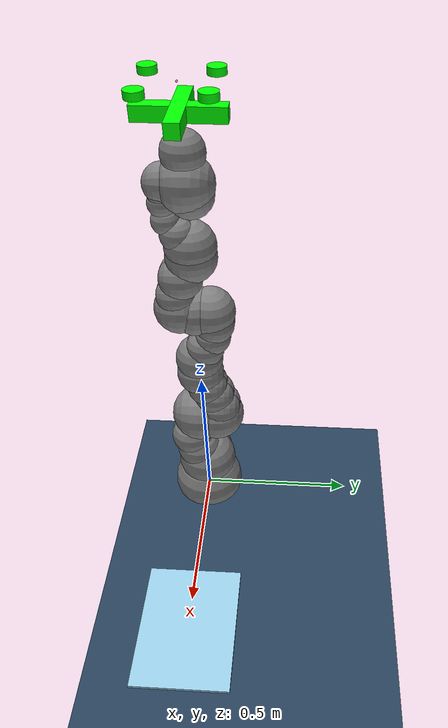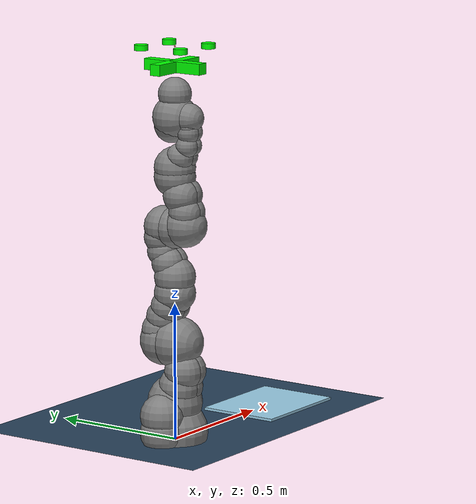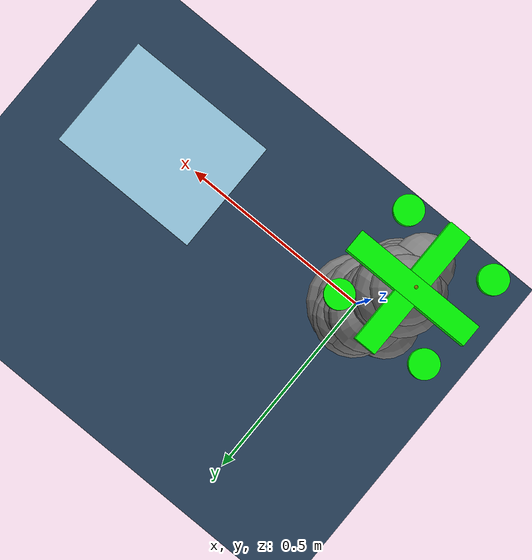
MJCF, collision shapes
<mujoco model="kuka_pick_plate_scene">
    <include file="kuka_vacuum.xml"/>

    <option timestep=".001" noslip_iterations="50" noslip_tolerance="0" impratio="100" cone="elliptic"/>

    <statistic center="0.3 0 0.4" extent=".8"/>

    <visual>
      <headlight diffuse=".4 .4 .4" ambient=".5 .5 .5"/>
      <global azimuth="160" elevation="-20" offheight="128" offwidth="128"/>
      <quality offsamples="8"/>
    </visual>

    <asset>
      <texture type="skybox" builtin="gradient" rgb1=".3 .5 .7" rgb2="0 0 0" width="32" height="512"/>
      <texture name="grid" type="2d" builtin="checker" width="512" height="512" rgb1=".1 .2 .3" rgb2=".2 .3 .4"/>
      <material name="grid" texture="grid" texrepeat="2 2" texuniform="true" reflectance="0"/>

      <material name="window_glass" rgba="0.6 0.8 0.9 0.5" shininess="0.8" reflectance="0.3" specular="0.5"/>
    </asset>

    <keyframe>
        <!-- KUKA home: qpos="0 0.785398 0 -1.5708 0 0 -1.5708" (joint7 rotated -90deg, gripper faces down) + plate initial state -->
        <key name="home" qpos="0 0.785398 0 -1.5708 0 0.785398 0 0.5 0 0.005 1 0 0 0"/>
    </keyframe>

    <worldbody>
      <!-- Front camera: adjusted for better view of KUKA workspace and plate interaction -->
      <camera name="front" pos="1.0 0.0 0.5" quat="0.5963678 0.3799282 0.3799282 0.5963678" fovy="50"/>
      <light pos="0 0 3" dir="0 0 -1" diffuse="1 1 1" specular=".3 .3 .3"/>
      <light pos="0 -.5 .4" mode="targetbodycom" target="plate_body" diffuse=".8 .8 .8" specular=".3 .3 .3"/>

      <geom name="floor" size="3 3 0.01" type="plane" material="grid"
            contype="1" conaffinity="1"
            solimp="0.99 0.99 0.01" solref="0.002 1" friction="5 5 5"/>

      <body name="plate_body" pos="0.6 0 .005">
        <freejoint name="plate_joint"/>
        <geom name="plate" type="box" size="0.2 0.15 0.005" mass="1.0" material="window_glass"
              contype="1" conaffinity="1" priority="1"
              solimp="0.99 0.99 0.01" solref="0.002 1" friction="10 10 10" condim="6"/>
      </body>

      <body name="target" pos=".15 0 .5" quat="0 1 0 0" mocap="true">
        <geom name="target" type="box" size=".03 .03 .03" contype="0" conaffinity="0" rgba=".6 .3 .3 0"/>
      </body>
    </worldbody>

    <sensor>
      <framepos name="plate_pos" objtype="geom" objname="plate"/>
      <framequat name="plate_quat" objtype="geom" objname="plate"/>
      <framepos name="block_pos" objtype="geom" objname="plate"/>
    </sensor>
</mujoco>

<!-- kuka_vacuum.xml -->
<mujoco model="kuka_vacuum">
  <compiler angle="radian" meshdir="kuka_iiwa_14/assets" autolimits="true"/>

  <option integrator="implicitfast"/>

  <default>
    <default class="iiwa">
      <material specular="0.5" shininess="0.25"/>
      <joint axis="0 0 1" armature="0.1" damping="1"/>
      <default class="joint1">
        <joint range="-2.96706 2.96706"/>
        <default class="joint2">
          <joint range="-2.0944 2.0944"/>
        </default>
      </default>
      <default class="joint3">
        <joint range="-3.05433 3.05433"/>
      </default>
      <default class="visual">
        <geom type="mesh" contype="0" conaffinity="0" group="2" material="gray"/>
      </default>
      <default class="collision">
        <geom group="3"/>
      </default>
      <site size="0.001" rgba="1 0 0 1" group="4"/>
    </default>

    <default class="vacuum_gripper">
      <default class="vacuum_gripper/visual">
         <geom contype="0" conaffinity="0" group="2"/>
      </default>
      <default class="vacuum_gripper/collision">
            <geom group="3" rgba="0 1 0 0.3" contype="1" conaffinity="1"
              condim="6" friction="10 10 10" margin="0.002"
              solimp="0.99 0.99 0.01" solref="0.004 1"/>
      </default>
    </default>
  </default>

  <asset>
    <material class="iiwa" name="gray" rgba="0.4 0.4 0.4 1"/>
    <material class="iiwa" name="light_gray" rgba="0.6 0.6 0.6 1"/>
    <material class="iiwa" name="black" rgba="0 0 0 1"/>
    <material class="iiwa" name="orange" rgba="1 0.423529 0.0392157 1"/>

    <material name="pp_black" rgba="0.1 0.1 0.1 1" specular="0.5" shininess="0.2"/>
    <material name="pp_green" rgba="0.0 0.6 0.3 1" specular="0.2" shininess="0.1"/>
    <material name="pp_yellow" rgba="0.95 0.8 0.1 1" specular="0.1" shininess="0.1"/>

    <mesh file="link_0.obj"/>
    <mesh file="link_1.obj"/>
    <mesh file="link_2_orange.obj"/>
    <mesh file="link_2_grey.obj"/>
    <mesh file="link_3.obj"/>
    <mesh file="band.obj"/>
    <mesh file="kuka.obj"/>
    <mesh file="link_4_orange.obj"/>
    <mesh file="link_4_grey.obj"/>
    <mesh file="link_5.obj"/>
    <mesh file="link_6_orange.obj"/>
    <mesh file="link_6_grey.obj"/>
    <mesh file="link_7.obj"/>

    <!-- PowerPick vacuum gripper meshes -->
    <!-- Note: meshdir is set to kuka_iiwa_14/assets, so paths are relative to that directory -->
    <!-- From kuka_iiwa_14/assets to assets/powerpick/meshes/pp30/ is ../../powerpick/meshes/pp30/ -->
    <mesh name="pp_frame" file="../../powerpick/meshes/pp30/frame_reduced.stl" scale="0.001 0.001 0.001"/>
    <mesh name="pp_bellows" file="../../powerpick/meshes/pp30/bellows.stl" scale="0.001 0.001 0.001"/>
    <mesh name="pp_lips" file="../../powerpick/meshes/pp30/lips.stl" scale="0.001 0.001 0.001"/>
  </asset>

  <worldbody>
    <light name="top" pos="0 0 2" mode="trackcom"/>
    <body name="base" childclass="iiwa">
      <inertial mass="5" pos="-0.1 0 0.07" diaginertia="0.05 0.06 0.03"/>
      <geom class="visual" mesh="link_0"/>
      <geom class="collision" size="0.12" pos="0 0 0.03"/>
      <geom class="collision" size="0.08" pos="-0.08 0 0.103"/>
      <geom class="collision" size="0.08" pos="-0.08 0 0.04"/>
      <geom class="collision" size="0.1" pos="0 0 0.14"/>
      <body name="link1" pos="0 0 0.1575">
        <inertial mass="5.76" pos="0 -0.03 0.12" diaginertia="0.0333 0.033 0.0123"/>
        <joint name="joint1" class="joint1"/>
        <site name="joint1"/>
        <geom class="visual" mesh="link_1"/>
        <geom class="collision" size="0.08" pos="0 0 -0.0005"/>
        <geom class="collision" size="0.075" pos="0.01 -0.025 0.0425"/>
        <geom class="collision" size="0.075" pos="-0.01 -0.025 0.0425"/>
        <geom class="collision" size="0.07" pos="0.01 -0.045 0.1025"/>
        <geom class="collision" size="0.07" pos="-0.01 -0.045 0.1025"/>
        <body name="link2" pos="0 0 0.2025" quat="0 0 1 1">
          <inertial mass="6.35" pos="0.0003 0.059 0.042" diaginertia="0.0305 0.0304 0.011" quat="0 0 1 1"/>
          <joint name="joint2" class="joint2"/>
          <site name="joint2"/>
          <geom class="visual" material="orange" mesh="link_2_orange"/>
          <geom class="visual" mesh="link_2_grey"/>
          <geom class="collision" size="0.095" pos="0 0 -0.01"/>
          <geom class="collision" size="0.09" pos="0 0 0.045"/>
          <geom class="collision" size="0.07" pos="-0.01 0.04 0.054"/>
          <geom class="collision" size="0.065" pos="-0.01 0.09 0.04"/>
          <geom class="collision" size="0.065" pos="-0.01 0.13 0.02"/>
          <geom class="collision" size="0.07" pos="0.01 0.04 0.054"/>
          <geom class="collision" size="0.065" pos="0.01 0.09 0.04"/>
          <geom class="collision" size="0.065" pos="0.01 0.13 0.02"/>
          <geom class="collision" size="0.075" pos="0 0.18 0"/>
          <body name="link3" pos="0 0.2045 0" quat="0 0 1 1">
            <inertial mass="3.5" pos="0 0.03 0.13" diaginertia="0.025 0.0238 0.0076"/>
            <joint name="joint3" class="joint1"/>
            <site name="joint3"/>
            <geom class="visual" mesh="link_3"/>
            <geom class="visual" material="light_gray" mesh="band"/>
            <geom class="visual" material="black" mesh="kuka"/>
            <geom class="collision" size="0.075" pos="0 0 0.0355"/>
            <geom class="collision" size="0.06" pos="0.01 0.023 0.0855"/>
            <geom class="collision" size="0.055" pos="0.01 0.048 0.1255"/>
            <geom class="collision" size="0.06" pos="0.01 0.056 0.1755"/>
            <geom class="collision" size="0.06" pos="-0.01 0.023 0.0855"/>
            <geom class="collision" size="0.055" pos="-0.01 0.048 0.1255"/>
            <geom class="collision" size="0.06" pos="-0.01 0.056 0.1755"/>
            <geom class="collision" size="0.075" pos="0 0.045 0.2155"/>
            <geom class="collision" size="0.075" pos="0 0 0.2155"/>
            <body name="link4" pos="0 0 0.2155" quat="1 1 0 0">
              <inertial mass="3.5" pos="0 0.067 0.034" diaginertia="0.017 0.0164 0.006" quat="1 1 0 0"/>
              <joint name="joint4" class="joint2"/>
              <site name="joint4"/>
              <geom class="visual" material="orange" mesh="link_4_orange"/>
              <geom class="visual" mesh="link_4_grey"/>
              <geom class="collision" size="0.078" pos="0 0.01 0.046"/>
              <geom class="collision" size="0.06" pos="0.01 0.06 0.052"/>
              <geom class="collision" size="0.065" pos="0.01 0.12 0.034"/>
              <geom class="collision" size="0.06" pos="-0.01 0.06 0.052"/>
              <geom class="collision" size="0.065" pos="-0.01 0.12 0.034"/>
              <geom class="collision" size="0.075" pos="0 0.184 0"/>
              <body name="link5" pos="0 0.1845 0" quat="0 0 1 1">
                <inertial mass="3.5" pos="0.0001 0.021 0.076" diaginertia="0.01 0.0087 0.00449"/>
                <joint name="joint5" class="joint1"/>
                <site name="joint5"/>
                <geom class="visual" mesh="link_5"/>
                <geom class="visual" material="light_gray" mesh="band"/>
                <geom class="visual" material="black" mesh="kuka"/>
                <geom class="collision" size="0.075" pos="0 0 0.0335"/>
                <geom class="collision" size="0.05" pos="-0.012 0.031 0.0755"/>
                <geom class="collision" size="0.05" pos="0.012 0.031 0.0755"/>
                <geom class="collision" size="0.04" pos="-0.012 0.06 0.1155"/>
                <geom class="collision" size="0.04" pos="0.012 0.06 0.1155"/>
                <geom class="collision" size="0.04" pos="-0.01 0.065 0.1655"/>
                <geom class="collision" size="0.04" pos="0.01 0.065 0.1655"/>
                <geom class="collision" size="0.035" pos="-0.012 0.065 0.1855"/>
                <geom class="collision" size="0.035" pos="0.012 0.065 0.1855"/>
                <body name="link6" pos="0 0 0.2155" quat="1 1 0 0">
                  <inertial mass="1.8" pos="0 0.0006 0.0004" diaginertia="0.0049 0.0047 0.0036" quat="1 1 0 0"/>
                  <joint name="joint6" class="joint2"/>
                  <site name="joint6"/>
                  <geom class="visual" material="orange" mesh="link_6_orange"/>
                  <geom class="visual" mesh="link_6_grey"/>
                  <geom class="collision" size="0.055" pos="0 0 -0.059"/>
                  <geom class="collision" size="0.065" pos="0 -0.03 0.011"/>
                  <geom class="collision" size="0.08"/>
                  <body name="link7" pos="0 0.081 0" quat="0 0 1 1">
                    <inertial mass="1.2" pos="0 0 0.02" diaginertia="0.001 0.001 0.001"/>
                    <joint name="joint7" class="joint3"/>
                    <site name="joint7"/>
                    <geom class="visual" mesh="link_7"/>
                    <geom class="collision" size="0.06" pos="0 0 0.001"/>
                    <site name="attachment_site" pos="0 0 0.045"/>
                    <!-- Wrist camera for visual feedback -->
                    <camera name="handcam_depth" pos="-0.05 0 0" fovy="62" quat="0 1 -1 0"/>
                    <camera name="handcam_rgb" pos="-0.05 0.015 0" fovy="42.5" quat="0 1 -1 0"/>

                    <!-- Vacuum gripper attached to link7 -->
                    <body name="vacuum_gripper" pos="0 0 0.15" quat="0 1 0 0" childclass="vacuum_gripper">
                      <inertial mass="0.5" pos="0 0 0.05" diaginertia="0.005 0.005 0.005"/>

                      <geom type="mesh" mesh="pp_frame" material="pp_black"
                            pos="-0.135010 -0.792761 -0.235147" quat="1 0 0 0"
                            contype="0" conaffinity="0" group="2"/>
                      <geom type="mesh" mesh="pp_bellows" material="pp_green"
                            pos="-0.135010 -0.792761 -0.235147" quat="1 0 0 0"
                            contype="0" conaffinity="0" group="2"/>
                      <geom type="mesh" mesh="pp_lips" material="pp_yellow"
                            pos="-0.135010 -0.792761 -0.235147" quat="1 0 0 0"
                            contype="0" conaffinity="0" group="2"/>

                      <geom name="col_frame_x" type="box" size="0.12 0.02 0.02" pos="0 0 0.05"
                            group="3" rgba="0 1 0 0.3" contype="1" conaffinity="1"/>
                      <geom name="col_frame_y" type="box" size="0.02 0.12 0.02" pos="0 0 0.05"
                            group="3" rgba="0 1 0 0.3" contype="1" conaffinity="1"/>

                      <geom name="col_cup_1" type="cylinder" size="0.025 0.01" pos="0.085 0.085 -0.020" class="vacuum_gripper/collision"/>
                      <geom name="col_cup_2" type="cylinder" size="0.025 0.01" pos="0.085 -0.085 -0.020" class="vacuum_gripper/collision"/>
                      <geom name="col_cup_3" type="cylinder" size="0.025 0.01" pos="-0.085 0.085 -0.020" class="vacuum_gripper/collision"/>
                      <geom name="col_cup_4" type="cylinder" size="0.025 0.01" pos="-0.085 -0.085 -0.020" class="vacuum_gripper/collision"/>

                      <site name="pinch" pos="0 0 -0.020" size="0.003" rgba="1 0 0 0.5"/>
                    </body>
                  </body>
                </body>
              </body>
            </body>
          </body>
        </body>
      </body>
    </body>
  </worldbody>

  <contact>
    <exclude body1="base" body2="link1"/>
    <exclude body1="base" body2="link2"/>
    <exclude body1="base" body2="link3"/>
    <exclude body1="link1" body2="link3"/>
    <exclude body1="link3" body2="link5"/>
    <exclude body1="link4" body2="link7"/>
    <exclude body1="link5" body2="link7"/>
  </contact>

  <actuator>
    <!-- Convert to motor actuators (like Panda) for better compatibility with opspace controller -->
    <!-- Using reasonable torque limits: larger joints can handle more torque -->
    <motor name="actuator1" joint="joint1" ctrlrange="-87 87"/>
    <motor name="actuator2" joint="joint2" ctrlrange="-87 87"/>
    <motor name="actuator3" joint="joint3" ctrlrange="-87 87"/>
    <motor name="actuator4" joint="joint4" ctrlrange="-87 87"/>
    <motor name="actuator5" joint="joint5" ctrlrange="-12 12"/>
    <motor name="actuator6" joint="joint6" ctrlrange="-12 12"/>
    <motor name="actuator7" joint="joint7" ctrlrange="-12 12"/>
    <adhesion name="fingers_actuator" body="vacuum_gripper" ctrlrange="0 1" gain="200"/>
  </actuator>

  <sensor>
    <!-- Joint position sensors (using same naming as Panda for compatibility) -->
    <jointpos name="panda/joint1_pos" joint="joint1"/>
    <jointpos name="panda/joint2_pos" joint="joint2"/>
    <jointpos name="panda/joint3_pos" joint="joint3"/>
    <jointpos name="panda/joint4_pos" joint="joint4"/>
    <jointpos name="panda/joint5_pos" joint="joint5"/>
    <jointpos name="panda/joint6_pos" joint="joint6"/>
    <jointpos name="panda/joint7_pos" joint="joint7"/>
    <jointvel name="panda/joint1_vel" joint="joint1"/>
    <jointvel name="panda/joint2_vel" joint="joint2"/>
    <jointvel name="panda/joint3_vel" joint="joint3"/>
    <jointvel name="panda/joint4_vel" joint="joint4"/>
    <jointvel name="panda/joint5_vel" joint="joint5"/>
    <jointvel name="panda/joint6_vel" joint="joint6"/>
    <jointvel name="panda/joint7_vel" joint="joint7"/>
    <torque name="panda/joint1_torque" site="joint1"/>
    <torque name="panda/joint2_torque" site="joint2"/>
    <torque name="panda/joint3_torque" site="joint3"/>
    <torque name="panda/joint4_torque" site="joint4"/>
    <torque name="panda/joint5_torque" site="joint5"/>
    <torque name="panda/joint6_torque" site="joint6"/>
    <torque name="panda/joint7_torque" site="joint7"/>
    <force name="panda/wrist_force" site="attachment_site"/>
    <!-- End-effector pose sensors (using same naming as Panda for compatibility) -->
    <framepos name="2f85/pinch_pos" objtype="site" objname="pinch"/>
    <framequat name="2f85/pinch_quat" objtype="site" objname="pinch"/>
    <framelinvel name="2f85/pinch_vel" objtype="site" objname="pinch"/>
    <frameangvel name="2f85/pinch_angvel" objtype="site" objname="pinch"/>
  </sensor>
</mujoco>
